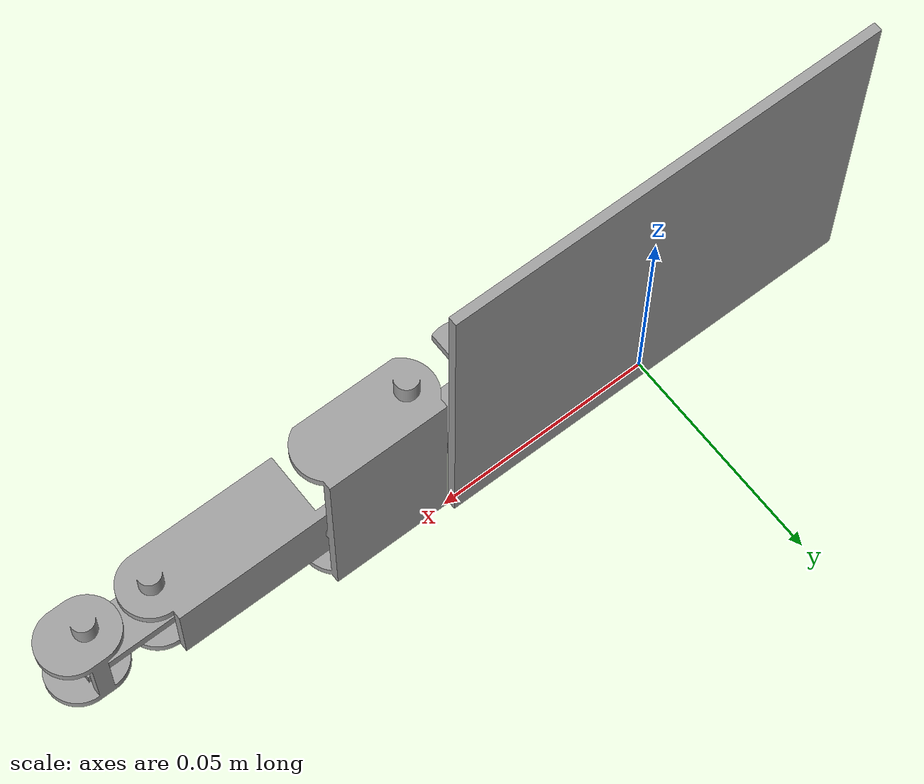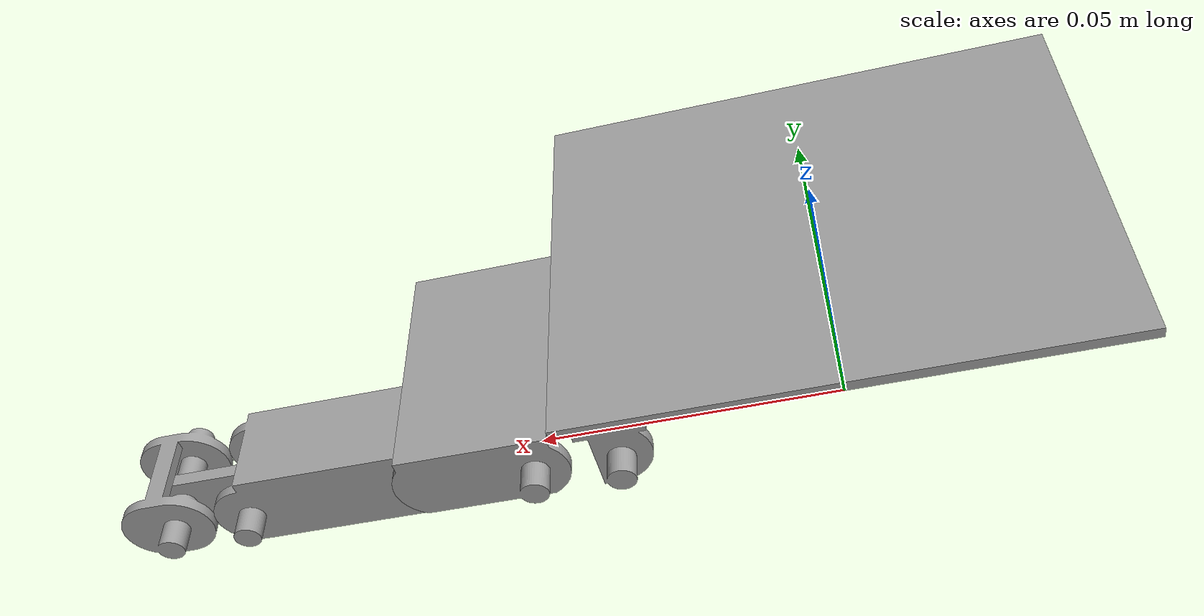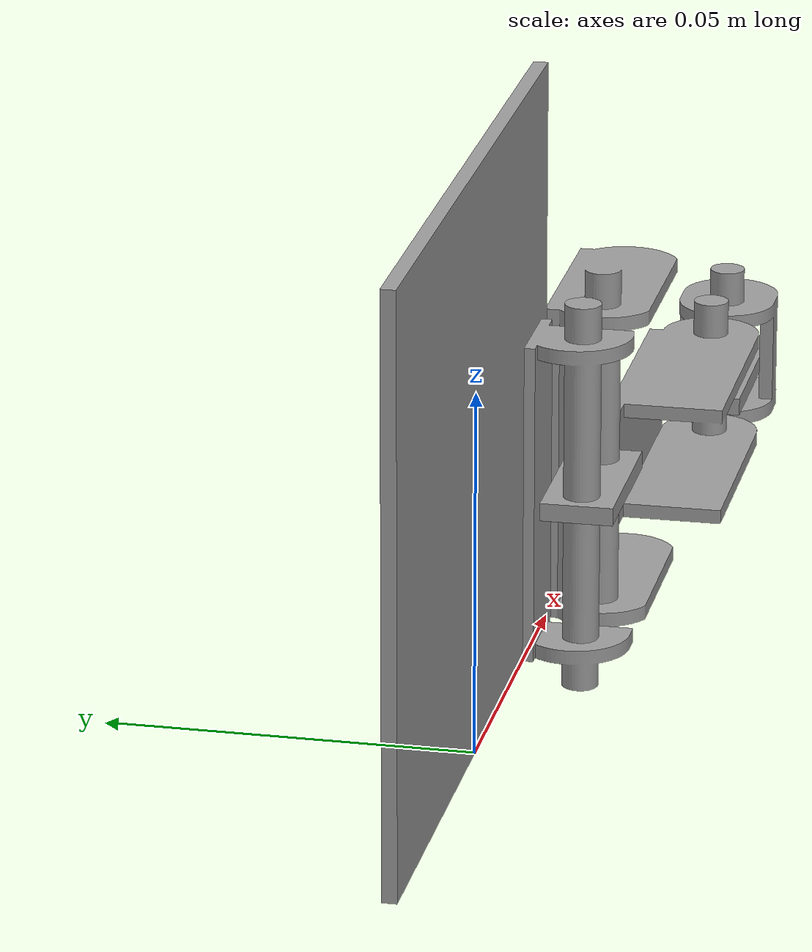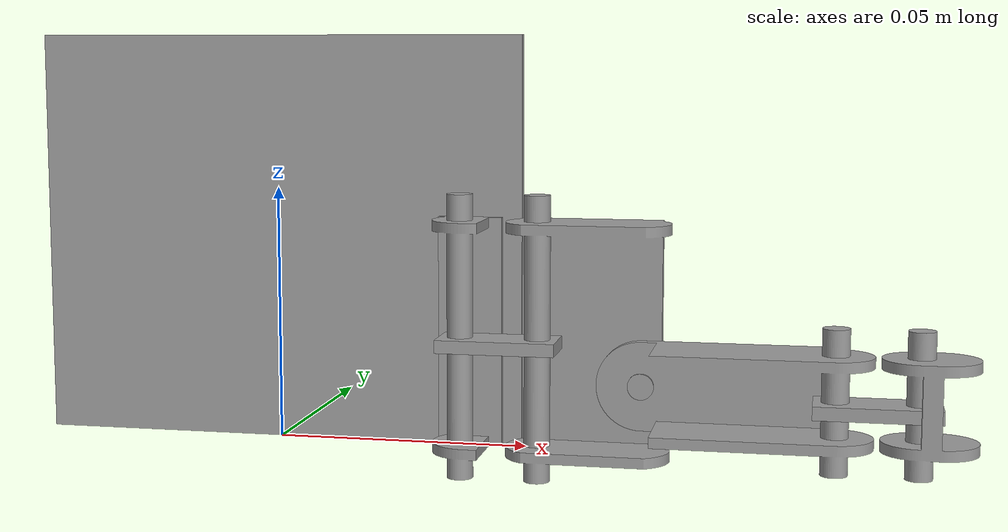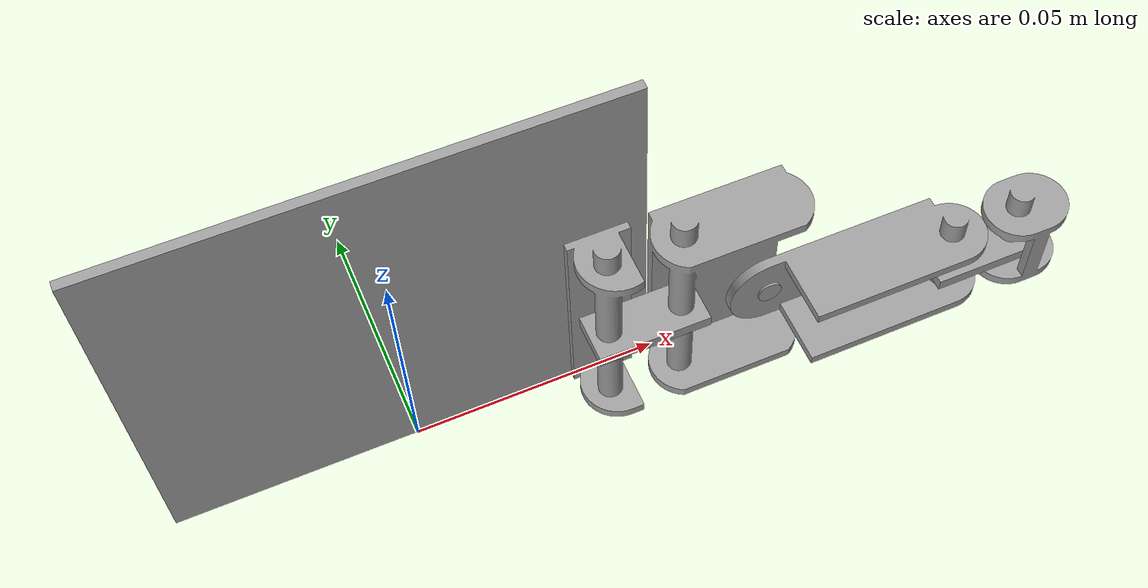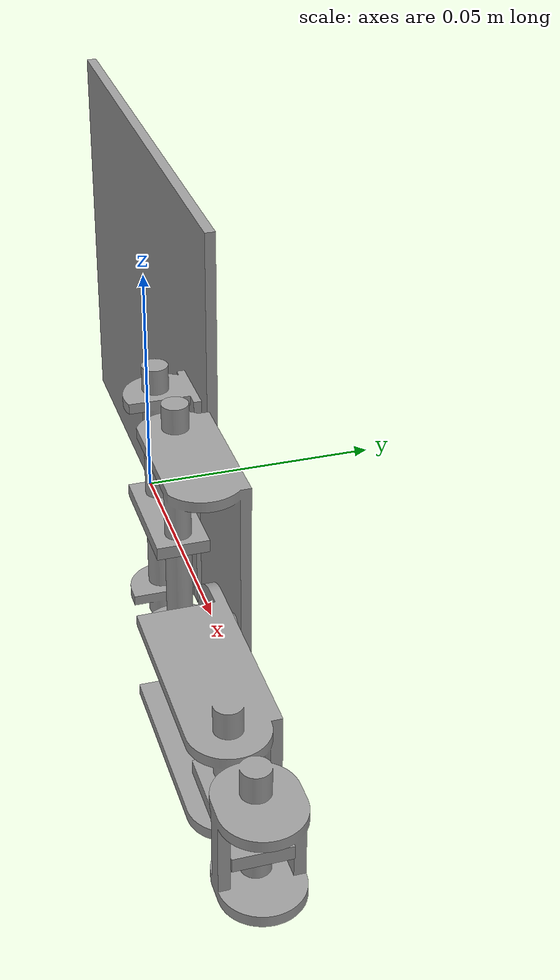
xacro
<?xml version="1.0" ?>
<robot name="hand" xmlns:xacro="http://www.ros.org/wiki/xacro">

<xacro:include filename="$(find hand_description)/urdf/materials.xacro" />
<xacro:include filename="$(find hand_description)/urdf/hand.trans" />
<xacro:include filename="$(find hand_description)/urdf/hand.gazebo" />
<link name="base_link">
  <inertial>
    <origin rpy="0 0 0" xyz="0.0 0.000999999999999985 0.04000000000000004"/>
    <mass value="0.123088"/>
    <inertia ixx="6.6e-05" ixy="-0.0" ixz="-0.0" iyy="0.000164" iyz="0.0" izz="9.9e-05"/>
  </inertial>
  <visual>
    <origin rpy="0 0 0" xyz="0 0 0"/>
    <geometry>
      <mesh filename="package://hand_description/meshes/base_link.stl" scale="0.001 0.001 0.001"/>
    </geometry>
    <material name="steel_satin"/>
  </visual>
  <collision>
    <origin rpy="0 0 0" xyz="0 0 0"/>
    <geometry>
      <mesh filename="package://hand_description/meshes/base_link.stl" scale="0.001 0.001 0.001"/>
    </geometry>
  </collision>
</link>

<link name="cmc_link_v4_1">
  <inertial>
    <origin rpy="0 0 0" xyz="-0.00048645427795625945 -0.004769447524329848 -6.493517695722872e-06"/>
    <mass value="0.018416700517789007"/>
    <inertia ixx="5e-06" ixy="-0.0" ixz="0.0" iyy="5e-06" iyz="-0.0" izz="0.0"/>
  </inertial>
  <visual>
    <origin rpy="0 0 0" xyz="-0.039 0.0 -0.0225"/>
    <geometry>
      <mesh filename="package://hand_description/meshes/cmc_link_v4_1.stl" scale="0.001 0.001 0.001"/>
    </geometry>
    <material name="steel_satin"/>
  </visual>
  <collision>
    <origin rpy="0 0 0" xyz="-0.039 0.0 -0.0225"/>
    <geometry>
      <mesh filename="package://hand_description/meshes/cmc_link_v4_1.stl" scale="0.001 0.001 0.001"/>
    </geometry>
  </collision>
</link>

<link name="t_connector_1_v1_1">
  <inertial>
    <origin rpy="0 0 0" xyz="0.007499999970143861 -1.312864400526692e-11 -0.0012499999999999768"/>
    <mass value="0.00374307805216622"/>
    <inertia ixx="0.0" ixy="-0.0" ixz="-0.0" iyy="0.0" iyz="-0.0" izz="0.0"/>
  </inertial>
  <visual>
    <origin rpy="0 0 0" xyz="-0.03825 0.007 -0.0225"/>
    <geometry>
      <mesh filename="package://hand_description/meshes/t_connector_1_v1_1.stl" scale="0.001 0.001 0.001"/>
    </geometry>
    <material name="steel_satin"/>
  </visual>
  <collision>
    <origin rpy="0 0 0" xyz="-0.03825 0.007 -0.0225"/>
    <geometry>
      <mesh filename="package://hand_description/meshes/t_connector_1_v1_1.stl" scale="0.001 0.001 0.001"/>
    </geometry>
  </collision>
</link>

<link name="t_mcp_v5_1">
  <inertial>
    <origin rpy="0 0 0" xyz="0.007807400362975329 0.002936289856962501 -0.00016613310844226098"/>
    <mass value="0.03943050014537037"/>
    <inertia ixx="1.1e-05" ixy="-0.0" ixz="0.0" iyy="1.3e-05" iyz="-0.0" izz="3e-06"/>
  </inertial>
  <visual>
    <origin rpy="0 0 0" xyz="-0.05325 0.007 -0.0225"/>
    <geometry>
      <mesh filename="package://hand_description/meshes/t_mcp_v5_1.stl" scale="0.001 0.001 0.001"/>
    </geometry>
    <material name="steel_satin"/>
  </visual>
  <collision>
    <origin rpy="0 0 0" xyz="-0.05325 0.007 -0.0225"/>
    <geometry>
      <mesh filename="package://hand_description/meshes/t_mcp_v5_1.stl" scale="0.001 0.001 0.001"/>
    </geometry>
  </collision>
</link>

<link name="t_pip_link_v5_1">
  <inertial>
    <origin rpy="0 0 0" xyz="0.021556157971685322 -0.006243616814845158 2.555247680113837e-15"/>
    <mass value="0.03216718051096679"/>
    <inertia ixx="2e-06" ixy="1e-06" ixz="0.0" iyy="7e-06" iyz="-0.0" izz="6e-06"/>
  </inertial>
  <visual>
    <origin rpy="0 0 0" xyz="-0.072947 0.004197 -0.014"/>
    <geometry>
      <mesh filename="package://hand_description/meshes/t_pip_link_v5_1.stl" scale="0.001 0.001 0.001"/>
    </geometry>
    <material name="steel_satin"/>
  </visual>
  <collision>
    <origin rpy="0 0 0" xyz="-0.072947 0.004197 -0.014"/>
    <geometry>
      <mesh filename="package://hand_description/meshes/t_pip_link_v5_1.stl" scale="0.001 0.001 0.001"/>
    </geometry>
  </collision>
</link>

<link name="t_connector_2_v1_1">
  <inertial>
    <origin rpy="0 0 0" xyz="0.00749969926025644 3.0084577047270744e-07 -0.0012499999999999543"/>
    <mass value="0.00374307805216622"/>
    <inertia ixx="0.0" ixy="0.0" ixz="0.0" iyy="0.0" iyz="0.0" izz="0.0"/>
  </inertial>
  <visual>
    <origin rpy="0 0 0" xyz="-0.108947 0.013197 -0.014"/>
    <geometry>
      <mesh filename="package://hand_description/meshes/t_connector_2_v1_1.stl" scale="0.001 0.001 0.001"/>
    </geometry>
    <material name="steel_satin"/>
  </visual>
  <collision>
    <origin rpy="0 0 0" xyz="-0.108947 0.013197 -0.014"/>
    <geometry>
      <mesh filename="package://hand_description/meshes/t_connector_2_v1_1.stl" scale="0.001 0.001 0.001"/>
    </geometry>
  </collision>
</link>

<link name="t_tip_v2_1">
  <inertial>
    <origin rpy="0 0 0" xyz="0.001140939821871606 7.444969044555216e-08 0.002500000000000042"/>
    <mass value="0.011962131611831003"/>
    <inertia ixx="1e-06" ixy="-0.0" ixz="0.0" iyy="1e-06" iyz="0.0" izz="0.0"/>
  </inertial>
  <visual>
    <origin rpy="0 0 0" xyz="-0.123947 0.013197 -0.0115"/>
    <geometry>
      <mesh filename="package://hand_description/meshes/t_tip_v2_1.stl" scale="0.001 0.001 0.001"/>
    </geometry>
    <material name="steel_satin"/>
  </visual>
  <collision>
    <origin rpy="0 0 0" xyz="-0.123947 0.013197 -0.0115"/>
    <geometry>
      <mesh filename="package://hand_description/meshes/t_tip_v2_1.stl" scale="0.001 0.001 0.001"/>
    </geometry>
  </collision>
</link>

<joint name="Rigid1" type="fixed">
  <origin rpy="0 0 0" xyz="0.039 0.0 0.0225"/>
  <parent link="base_link"/>
  <child link="cmc_link_v4_1"/>
</joint>

<joint name="Rev2" type="continuous">
  <origin rpy="0 0 0" xyz="-0.00075 -0.007 0.0"/>
  <parent link="cmc_link_v4_1"/>
  <child link="t_connector_1_v1_1"/>
  <axis xyz="0.0 0.0 -1.0"/>
</joint>

<joint name="Rigid3" type="fixed">
  <origin rpy="0 0 0" xyz="0.015 0.0 0.0"/>
  <parent link="t_connector_1_v1_1"/>
  <child link="t_mcp_v5_1"/>
</joint>

<joint name="Rev4" type="continuous">
  <origin rpy="0 0 0" xyz="0.019697 0.002803 -0.0085"/>
  <parent link="t_mcp_v5_1"/>
  <child link="t_pip_link_v5_1"/>
  <axis xyz="0.0 -1.0 -0.0"/>
</joint>

<joint name="Rev5" type="continuous">
  <origin rpy="0 0 0" xyz="0.036 -0.009 0.0"/>
  <parent link="t_pip_link_v5_1"/>
  <child link="t_connector_2_v1_1"/>
  <axis xyz="-0.0 0.0 -1.0"/>
</joint>

<joint name="Rev6" type="continuous">
  <origin rpy="0 0 0" xyz="0.015 0.0 -0.0025"/>
  <parent link="t_connector_2_v1_1"/>
  <child link="t_tip_v2_1"/>
  <axis xyz="-0.0 0.0 -1.0"/>
</joint>

</robot>

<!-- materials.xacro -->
<robot name="hand" xmlns:xacro="http://www.ros.org/wiki/xacro" >

<material name="silver_default">
  <color rgba="0.700 0.700 0.700 1.000"/>
</material>
<material name="steel_satin">
  <color rgba="0.6274509803921569 0.6274509803921569 0.6274509803921569 1.0"/>
</material>

</robot>

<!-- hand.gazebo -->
<robot name="hand" xmlns:xacro="http://www.ros.org/wiki/xacro" >

<xacro:property name="body_color" value="Gazebo/Silver" />

<gazebo>
  <plugin filename="libgazebo_ros_control.so" name="control"/>
</gazebo>
<gazebo reference="base_link">
  <material>${body_color}</material>
  <mu1>0.2</mu1>
  <mu2>0.2</mu2>
  <selfCollide>true</selfCollide>
  <gravity>true</gravity>
</gazebo>

<gazebo reference="cmc_link_v4_1">
  <material>${body_color}</material>
  <mu1>0.2</mu1>
  <mu2>0.2</mu2>
  <selfCollide>true</selfCollide>
</gazebo>

<gazebo reference="t_connector_1_v1_1">
  <material>${body_color}</material>
  <mu1>0.2</mu1>
  <mu2>0.2</mu2>
  <selfCollide>true</selfCollide>
</gazebo>

<gazebo reference="t_mcp_v5_1">
  <material>${body_color}</material>
  <mu1>0.2</mu1>
  <mu2>0.2</mu2>
  <selfCollide>true</selfCollide>
</gazebo>

<gazebo reference="t_pip_link_v5_1">
  <material>${body_color}</material>
  <mu1>0.2</mu1>
  <mu2>0.2</mu2>
  <selfCollide>true</selfCollide>
</gazebo>

<gazebo reference="t_connector_2_v1_1">
  <material>${body_color}</material>
  <mu1>0.2</mu1>
  <mu2>0.2</mu2>
  <selfCollide>true</selfCollide>
</gazebo>

<gazebo reference="t_tip_v2_1">
  <material>${body_color}</material>
  <mu1>0.2</mu1>
  <mu2>0.2</mu2>
  <selfCollide>true</selfCollide>
</gazebo>

</robot>
